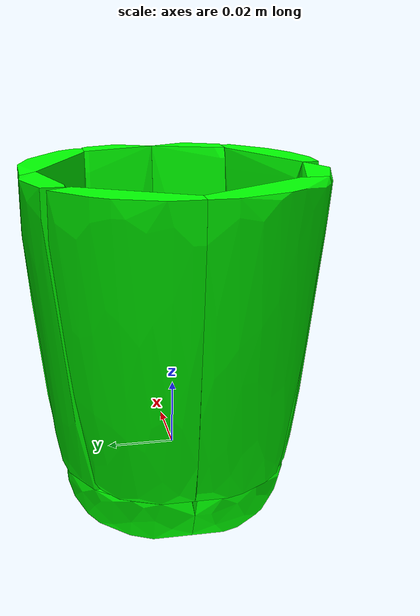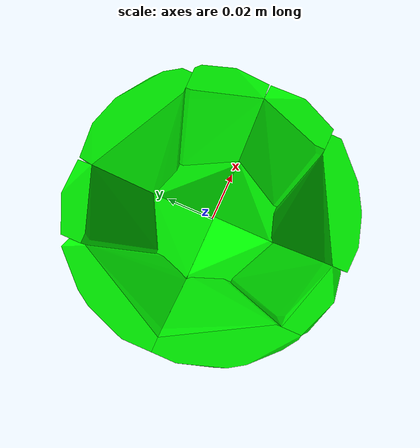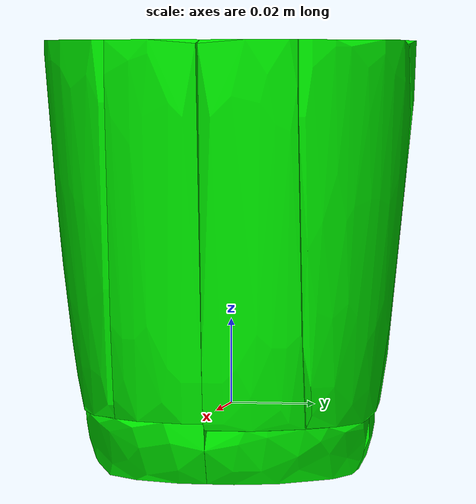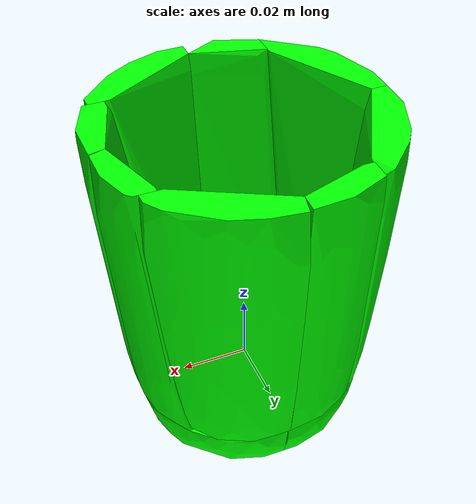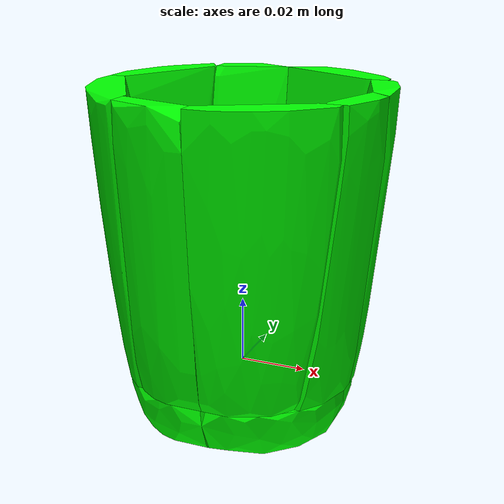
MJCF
<mujoco model="cup">

    <asset>
        <mesh name="cup" file="../meshes/grab/cup/cup.stl" scale="1 1 1" />
        <mesh name="contact0" file="../meshes/grab/cup/contact0.stl" scale="1 1 1" />
        <mesh name="contact1" file="../meshes/grab/cup/contact1.stl" scale="1 1 1" />
        <mesh name="contact2" file="../meshes/grab/cup/contact2.stl" scale="1 1 1" />
        <mesh name="contact3" file="../meshes/grab/cup/contact3.stl" scale="1 1 1" />
        <mesh name="contact4" file="../meshes/grab/cup/contact4.stl" scale="1 1 1" />
        <mesh name="contact5" file="../meshes/grab/cup/contact5.stl" scale="1 1 1" />
        <mesh name="contact6" file="../meshes/grab/cup/contact6.stl" scale="1 1 1" />
        <mesh name="contact7" file="../meshes/grab/cup/contact7.stl" scale="1 1 1" />
        <mesh name="contact8" file="../meshes/grab/cup/contact8.stl" scale="1 1 1" />
        <mesh name="contact9" file="../meshes/grab/cup/contact9.stl" scale="1 1 1" />
        <mesh name="contact10" file="../meshes/grab/cup/contact10.stl" scale="1 1 1" />
        <mesh name="contact11" file="../meshes/grab/cup/contact11.stl" scale="1 1 1" />
    </asset>

    <worldbody>
        <body name="object" pos="0.00 0.0 0.035" >
            <!--geom name="cup_visual" type="mesh" contype="0" conaffinity="0" mass="0" group="1" material="MatObject" mesh="cup" rgba="1 0 0 1.0" /-->
            <geom name="cup_contact0" density="1250" type="mesh" mesh="contact0" condim="4" rgba="0 1 0 1" />
            <geom name="cup_contact1" density="1250" type="mesh" mesh="contact1" condim="4" rgba="0 1 0 1" />
            <geom name="cup_contact2" density="1250" type="mesh" mesh="contact2" condim="4" rgba="0 1 0 1" />
            <geom name="cup_contact3" density="1250" type="mesh" mesh="contact3" condim="4" rgba="0 1 0 1" />
            <geom name="cup_contact4" density="1250" type="mesh" mesh="contact4" condim="4" rgba="0 1 0 1" />
            <geom name="cup_contact5" density="1250" type="mesh" mesh="contact5" condim="4" rgba="0 1 0 1" />
            <geom name="cup_contact6" density="1250" type="mesh" mesh="contact6" condim="4" rgba="0 1 0 1" />
            <geom name="cup_contact7" density="1250" type="mesh" mesh="contact7" condim="4" rgba="0 1 0 1" />
            <geom name="cup_contact8" density="1250" type="mesh" mesh="contact8" condim="4" rgba="0 1 0 1" />
            <geom name="cup_contact9" density="1250" type="mesh" mesh="contact9" condim="4" rgba="0 1 0 1" />
            <geom name="cup_contact10" density="1250" type="mesh" mesh="contact10" condim="4" rgba="0 1 0 1" />
            <geom name="cup_contact11" density="1250" type="mesh" mesh="contact11" condim="4" rgba="0 1 0 1" />
        </body>
    </worldbody>
</mujoco>
